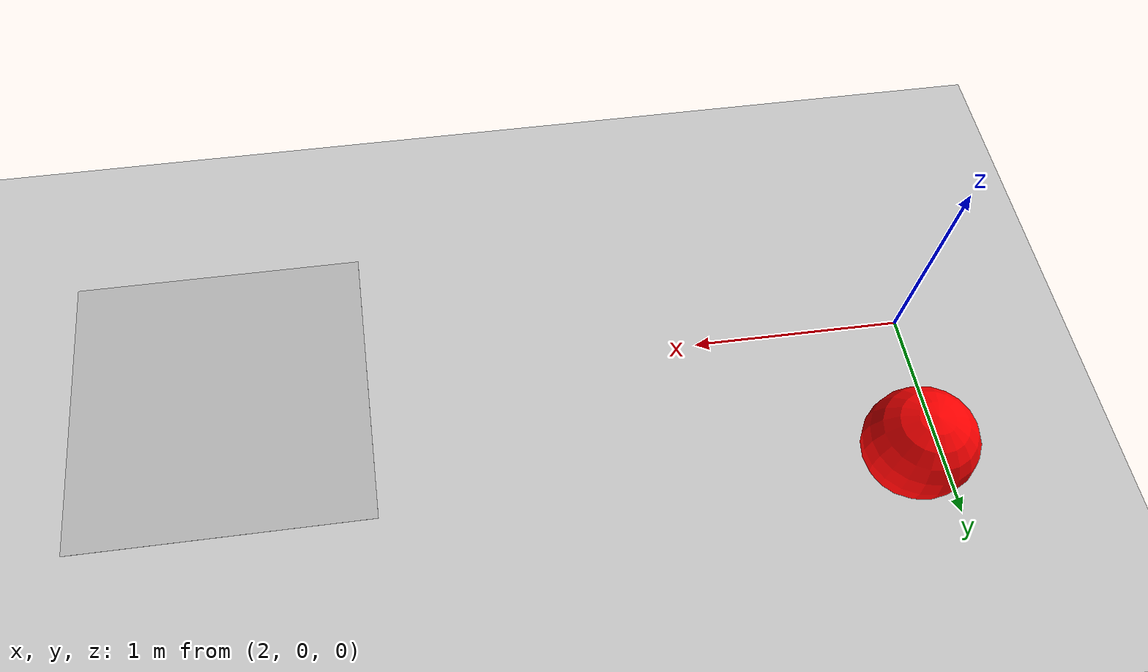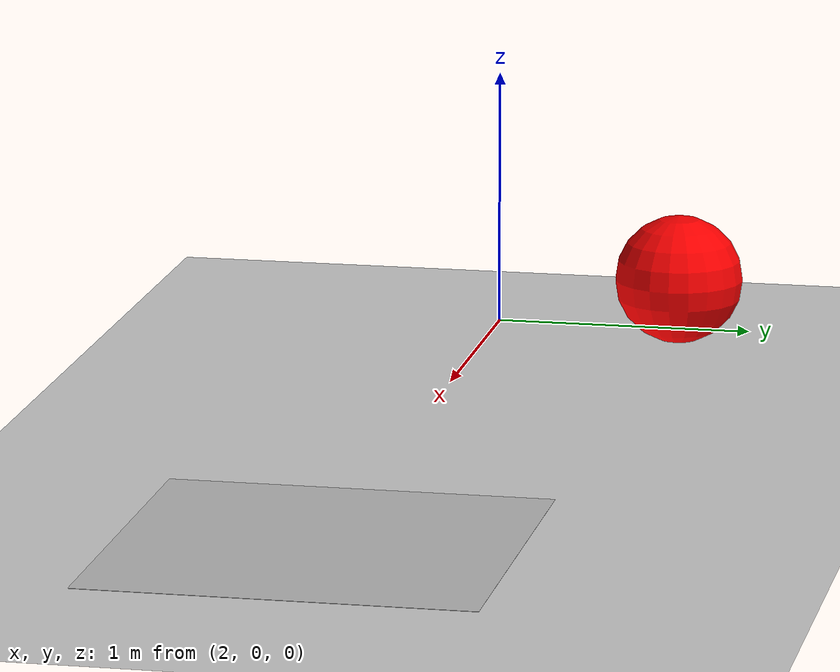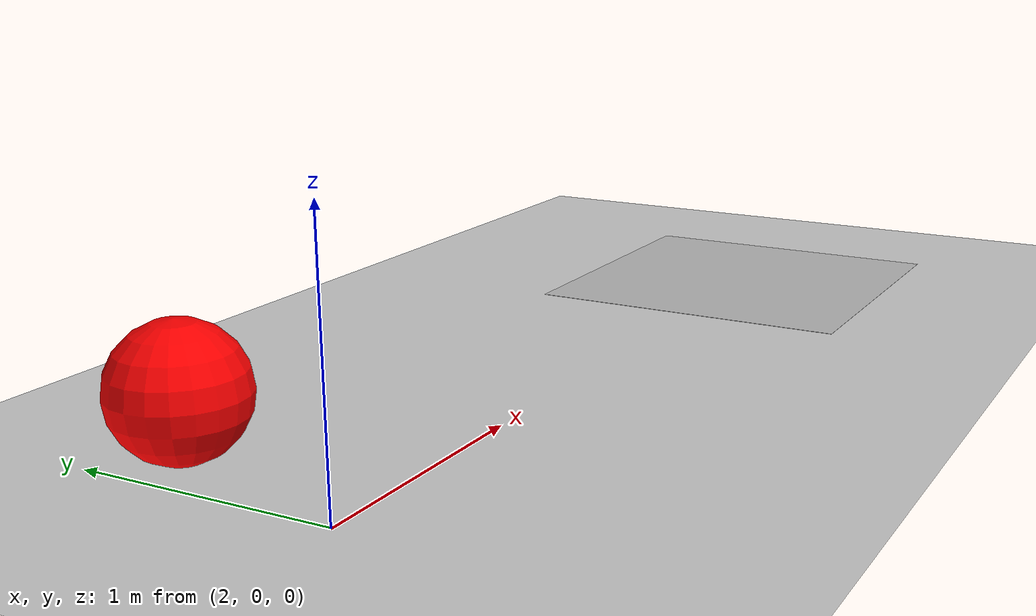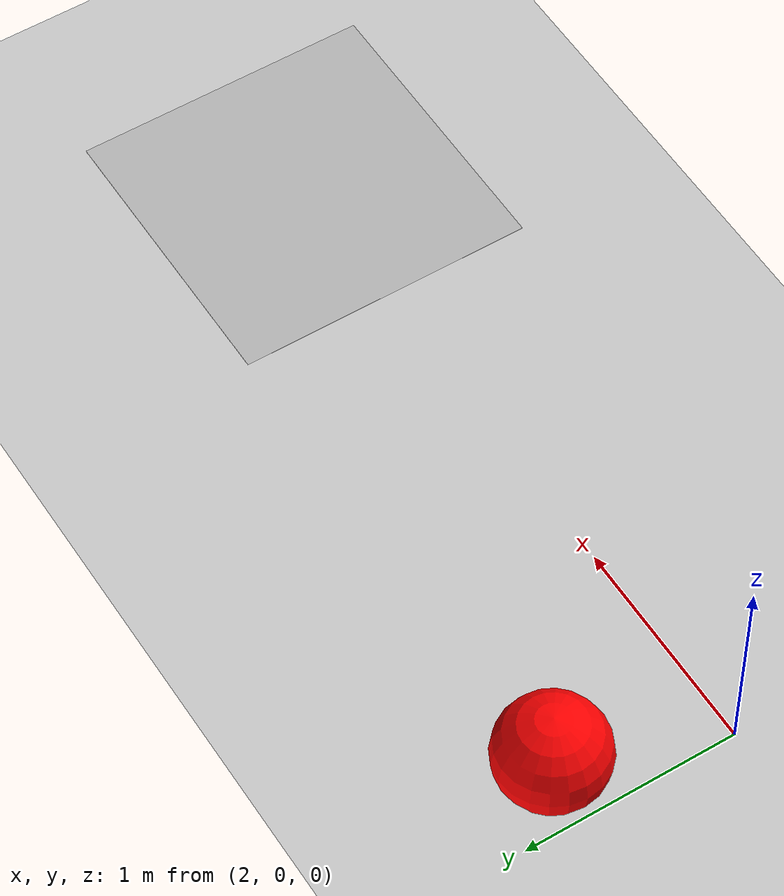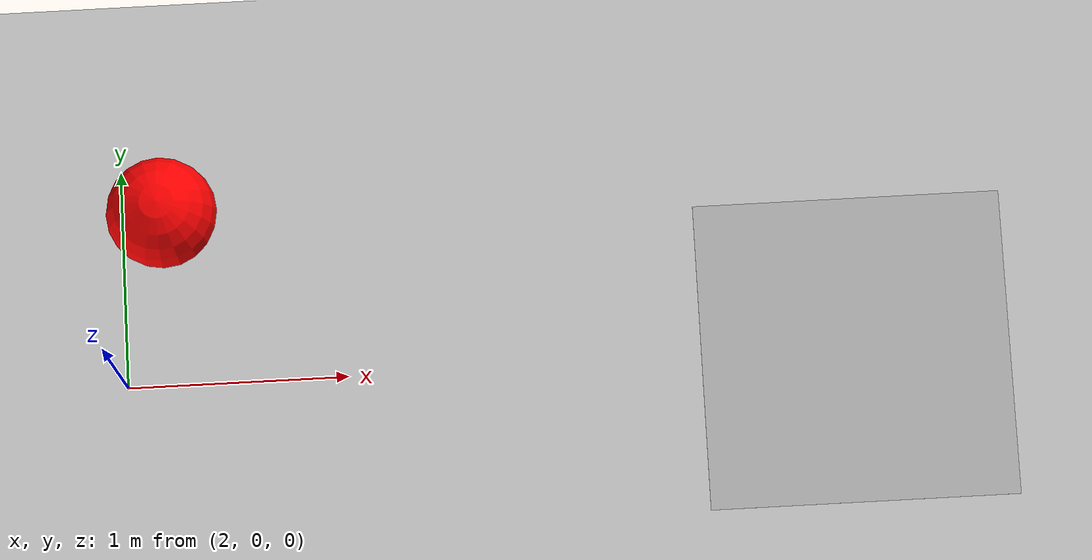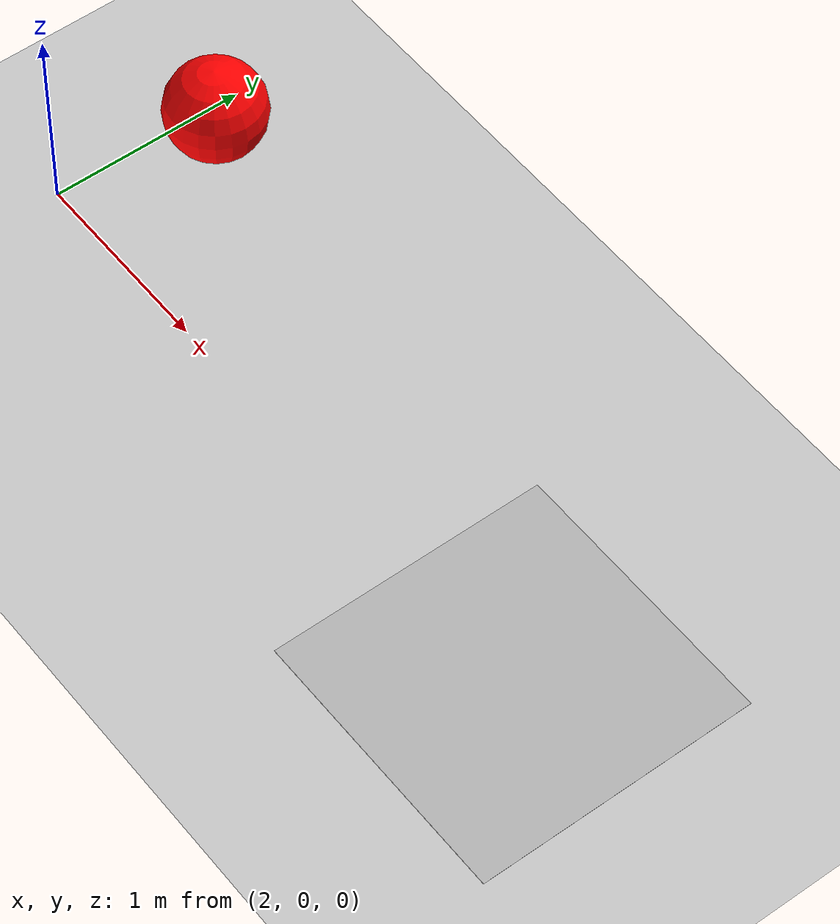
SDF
<?xml version="1.0"?>
<sdf version="1.6">
  <world name="drone_assignment_world">
    <gravity>0 0 -9.81</gravity>

    <physics name="default_physics" type="ode">
      <max_step_size>0.0025</max_step_size>
      <real_time_update_rate>400</real_time_update_rate>
    </physics>

    <scene>
      <ambient>0.65 0.65 0.65 1</ambient>
      <background>0.72 0.82 0.92 1</background>
      <shadows>true</shadows>
    </scene>

    <include>
      <uri>model://sun</uri>
    </include>
    <include>
      <uri>model://ground_plane</uri>
    </include>

    <!-- Drone düz bir hat üzerinde ilerlerken önce kırmızı topu, sonra ArUco'yu görür. -->
    <include>
      <uri>model://red_ball</uri>
      <name>red_ball_target</name>
      <pose>2.2 0.75 0 0 0 0</pose>
    </include>

    <include>
      <uri>model://aruco_pad</uri>
      <name>aruco_landing_pad</name>
      <pose>5.3 0 0.012 0 0 0</pose>
    </include>

    <gui fullscreen="0">
      <camera name="user_camera">
        <pose>-6 -8 6 0 0.35 0.85</pose>
        <view_controller>orbit</view_controller>
      </camera>
    </gui>
  </world>
</sdf>

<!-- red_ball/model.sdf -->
<sdf version="1.6">
  <model name="red_ball">
    <static>true</static>
    <link name="ball_link">
      <pose>0 0 0.25 0 0 0</pose>
      <collision name="collision">
        <geometry><sphere><radius>0.25</radius></sphere></geometry>
      </collision>
      <visual name="visual">
        <geometry><sphere><radius>0.25</radius></sphere></geometry>
        <material>
          <ambient>0.8 0.0 0.0 1</ambient>
          <diffuse>1.0 0.0 0.0 1</diffuse>
          <specular>0.15 0.15 0.15 1</specular>
        </material>
      </visual>
    </link>
  </model>
</sdf>

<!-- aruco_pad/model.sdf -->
<sdf version="1.6">
  <model name="aruco_pad">
    <static>true</static>
    <link name="pad_link">
      <collision name="collision">
        <pose>0 0 -0.01 0 0 0</pose>
        <geometry><box><size>1.4 1.4 0.02</size></box></geometry>
      </collision>
      <visual name="marker_visual">
        <geometry>
          <plane>
            <normal>0 0 1</normal>
            <size>1.4 1.4</size>
          </plane>
        </geometry>
        <material>
          <script>
            <uri>model://aruco_pad/materials/scripts</uri>
            <uri>model://aruco_pad/materials/textures</uri>
            <name>ArUco/Marker0</name>
          </script>
        </material>
      </visual>
    </link>
  </model>
</sdf>
